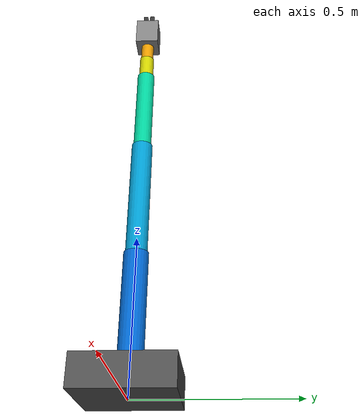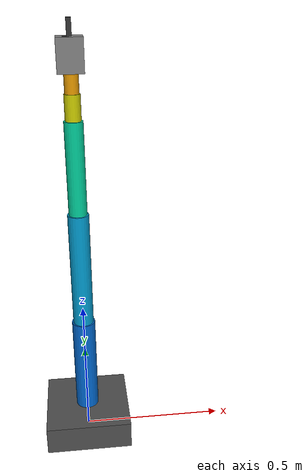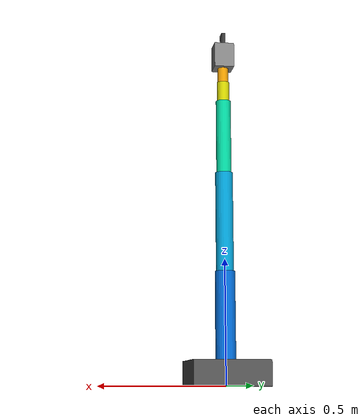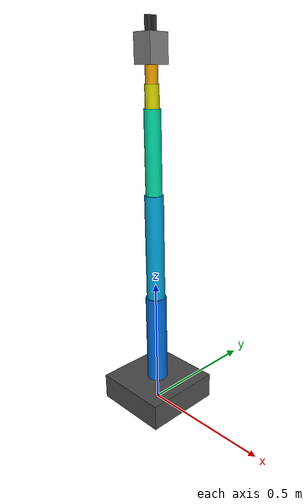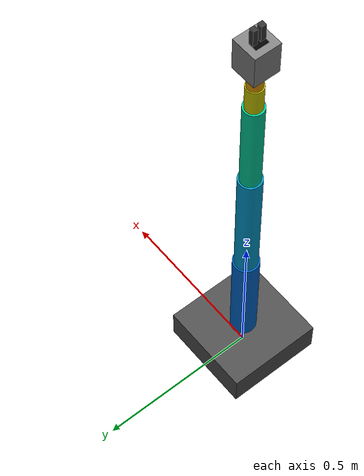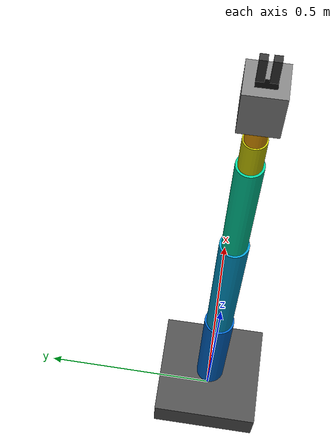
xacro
<?xml version="1.0"?>
<robot name="nexus_ags" xmlns:xacro="http://www.ros.org/wiki/xacro">

    <link name="world" />

    <!-- WORLD to BASE -->
    <joint name="world_joint" type="fixed">
        <parent link="world" />
        <child link="base_link" />
        <origin xyz="0 0 0" rpy="0 0 0" />
    </joint>
    <link name="base_link">
        <visual>
            <origin xyz="0 0 0.05" />
            <geometry>
                <box size="0.3 0.3 0.1" />
            </geometry>
            <material name="base">
                <color rgba="0.3 0.3 0.3 1" />
            </material>
        </visual>
        <collision>
            <origin xyz="0 0 0.05" />
            <geometry>
                <box size="0.3 0.3 0.1" />
            </geometry>
        </collision>
        <inertial>
            <origin xyz="0 0 0.05" />
            <mass value="50" />
            <inertia ixx="0.5" iyy="0.5" izz="0.5" ixy="0" ixz="0" iyz="0" />
        </inertial>
    </link>

    <!-- BASE to SHOULDER -->
    <joint name="shoulder_joint" type="revolute">
        <parent link="base_link" />
        <child link="shoulder_link" />
        <origin xyz="0 0 0.05" />
        <axis xyz="0 0 1" />
        <limit lower="-3.14" upper="3.14" effort="300" velocity="1" />
    </joint>
    <!-- JOINT to SHOULDER -->
    <link name="shoulder_link">
        <visual>
            <origin xyz="0 0 0.2" />
            <geometry>
                <cylinder length="0.4" radius="0.04" />
            </geometry>
            <material name="shoulder">
                <color rgba="0.0 0.4 0.8 1" />
            </material>
        </visual>
        <collision>
            <origin xyz="0 0 0.2" />
            <geometry>
                <cylinder length="0.4" radius="0.04" />
            </geometry>
        </collision>
        <inertial>
            <origin xyz="0 0 0.2" />
            <mass value="2" />
            <inertia ixx="0.02" iyy="0.02" izz="0.02" ixy="0" ixz="0" iyz="0" />
        </inertial>
    </link>

    <!-- SHOULDER to EBLOW -->
    <joint name="elbow_joint" type="revolute">
        <parent link="shoulder_link" />
        <child link="elbow_link" />
        <origin xyz="0 0 0.4" />
        <axis xyz="1 0 0" />
        <limit lower="-1.57" upper="1.57" effort="300" velocity="1" />
    </joint>
    <link name="elbow_link">
        <visual>
            <origin xyz="0 0 0.2" />
            <geometry>
                <cylinder length="0.4" radius="0.035" />
            </geometry>
            <material name="elbow">
                <color rgba="0.0 0.6 0.8 1" />
            </material>
        </visual>
        <collision>
            <origin xyz="0 0 0.2" />
            <geometry>
                <cylinder length="0.4" radius="0.035" />
            </geometry>
        </collision>
        <inertial>
            <origin xyz="0 0 0.2" />
            <mass value="1.5" />
            <inertia ixx="0.015" iyy="0.015" izz="0.015" ixy="0" ixz="0" iyz="0" />
        </inertial>
    </link>

    <!-- ELBOW to FOREARM -->
    <joint name="forearm_joint" type="revolute">
        <parent link="elbow_link" />
        <child link="forearm_link" />
        <origin xyz="0 0 0.4" />
        <axis xyz="1 0 0" />
        <limit lower="-1.57" upper="1.57" effort="300" velocity="1" />
    </joint>
    <link name="forearm_link">
        <visual>
            <origin xyz="0 0 0.15" />
            <geometry>
                <cylinder length="0.3" radius="0.03" />
            </geometry>
            <material name="forearm">
                <color rgba="0.0 0.8 0.6 1" />
            </material>
        </visual>
        <collision>
            <origin xyz="0 0 0.15" />
            <geometry>
                <cylinder length="0.3" radius="0.03" />
            </geometry>
        </collision>
        <inertial>
            <origin xyz="0 0 0.15" />
            <mass value="1" />
            <inertia ixx="0.01" iyy="0.01" izz="0.01" ixy="0" ixz="0" iyz="0" />
        </inertial>
    </link>

    <!-- FOREARM to WRIST PITCH -->
    <joint name="wrist_pitch_joint" type="revolute">
        <parent link="forearm_link" />
        <child link="wrist_pitch_link" />
        <origin xyz="0 0 0.3" />
        <axis xyz="1 0 0" />
        <limit lower="-1.57" upper="1.57" effort="100" velocity="1" />
    </joint>
    <link name="wrist_pitch_link">
        <visual>
            <origin xyz="0 0 0.04" />
            <geometry>
                <cylinder length="0.08" radius="0.025" />
            </geometry>
            <material name="wrist_pitch">
                <color rgba="0.8 0.8 0.0 1" />
            </material>
        </visual>
        <collision>
            <origin xyz="0 0 0.04" />
            <geometry>
                <cylinder length="0.08" radius="0.025" />
            </geometry>
        </collision>
        <inertial>
            <origin xyz="0 0 0.04" />
            <mass value="0.4" />
            <inertia ixx="0.002" iyy="0.002" izz="0.002" ixy="0" ixz="0" iyz="0" />
        </inertial>
    </link>

    <!-- WRIST PITCH to WRIST ROLL -->
    <joint name="wrist_roll_joint" type="revolute">
        <parent link="wrist_pitch_link" />
        <child link="wrist_roll_link" />
        <origin xyz="0 0 0.08" />
        <axis xyz="0 0 1" />
        <limit lower="-3.14" upper="3.14" effort="50" velocity="2" />
    </joint>
    <link name="wrist_roll_link">
        <visual>
            <origin xyz="0 0 0.03" />
            <geometry>
                <cylinder length="0.06" radius="0.022" />
            </geometry>
            <material name="wrist_roll">
                <color rgba="0.9 0.6 0.0 1" />
            </material>
        </visual>
        <collision>
            <origin xyz="0 0 0.03" />
            <geometry>
                <cylinder length="0.06" radius="0.022" />
            </geometry>
        </collision>
        <inertial>
            <origin xyz="0 0 0.03" />
            <mass value="0.3" />
            <inertia ixx="0.001" iyy="0.001" izz="0.001" ixy="0" ixz="0" iyz="0" />
        </inertial>
    </link>

    <!-- WRIST ROLL to GRIPPER BASE -->
    <joint name="gripper_mount_joint" type="fixed">
        <parent link="wrist_roll_link" />
        <child link="gripper_base" />
        <origin xyz="0 0 0.06" />
    </joint>
    <link name="gripper_base">
        <visual>
            <origin xyz="0 0 0.05" />
            <geometry>
                <box size="0.08 0.08 0.1" />
            </geometry>
            <material name="gripper">
                <color rgba="0.5 0.5 0.5 1" />
            </material>
        </visual>
        <collision>
            <origin xyz="0 0 0.05" />
            <geometry>
                <box size="0.08 0.08 0.1" />
            </geometry>
        </collision>
        <inertial>
            <origin xyz="0 0 0.05" />
            <mass value="0.4" />
            <inertia ixx="0.002" iyy="0.002" izz="0.002" ixy="0" ixz="0" iyz="0" />
        </inertial>
    </link>

    <!-- GRIPPER BASE to CAMERA -->
    <joint name="camera_joint" type="fixed">
        <parent link="gripper_base" />
        <child link="camera_link" />
        <origin xyz="0 0 0.08" rpy="0 -1.57 0" />
    </joint>
    <link name="camera_link">
        <visual>
            <geometry>
                <box size="0.04 0.04 0.04" />
            </geometry>
            <material name="black">
                <color rgba="0 0 0 1" />
            </material>
        </visual>
    </link>

    <!-- GRIPPER BASE to LEFT FINGER -->
    <joint name="left_finger_joint" type="prismatic">
        <parent link="gripper_base" />
        <child link="left_finger" />
        <origin xyz="0 0.012 0.05" />
        <axis xyz="0 1 0" />
        <limit lower="0" upper="0.025" effort="100" velocity="0.2" />
    </joint>
    <link name="left_finger">
        <visual>
            <origin xyz="0 0 0.05" />
            <geometry>
                <box size="0.015 0.015 0.1" />
            </geometry>
            <material name="finger">
                <color rgba="0.2 0.2 0.2 1" />
            </material>
        </visual>
        <collision>
            <origin xyz="0 0 0.05" />
            <geometry>
                <box size="0.015 0.015 0.1" />
            </geometry>
        </collision>
        <inertial>
            <origin xyz="0 0 0.05" />
            <mass value="0.05" />
            <inertia ixx="0.0002" iyy="0.0002" izz="0.0002" ixy="0" ixz="0" iyz="0" />
        </inertial>
    </link>

    <!-- GRIPPER BASE to RIGHT FINGER -->
    <joint name="right_finger_joint" type="prismatic">
        <parent link="gripper_base" />
        <child link="right_finger" />
        <origin xyz="0 -0.012 0.05" />
        <axis xyz="0 -1 0" />
        <limit lower="0" upper="0.025" effort="100" velocity="0.2" />
    </joint>
    <link name="right_finger">
        <visual>
            <origin xyz="0 0 0.05" />
            <geometry>
                <box size="0.015 0.015 0.1" />
            </geometry>
            <material name="finger">
                <color rgba="0.2 0.2 0.2 1" />
            </material>
        </visual>
        <collision>
            <origin xyz="0 0 0.05" />
            <geometry>
                <box size="0.015 0.015 0.1" />
            </geometry>
        </collision>
        <inertial>
            <origin xyz="0 0 0.05" />
            <mass value="0.05" />
            <inertia ixx="0.0002" iyy="0.0002" izz="0.0002" ixy="0" ixz="0" iyz="0" />
        </inertial>
    </link>

    <!-- CAMERA PLUGIN -->
    <gazebo reference="camera_link">
        <sensor name="camera" type="camera">
            <update_rate>30</update_rate>
            <topic>camera/image</topic>
            <camera>
                <horizontal_fov>1.396</horizontal_fov>
                <image>
                    <width>640</width>
                    <height>480</height>
                    <format>R8G8B8</format>
                </image>
            </camera>
        </sensor>
    </gazebo>
    <gazebo>
        <plugin
            filename="gz-sim-sensors-system"
            name="gz::sim::systems::Sensors">
            <render_engine>ogre2</render_engine>
        </plugin>
    </gazebo>

    <!-- ================= ROS2 CONTROL ================= -->
    <ros2_control name="nexus_ags_controller" type="system">
        <hardware>
            <plugin>gz_ros2_control/GazeboSimSystem</plugin>
        </hardware>
        <joint name="shoulder_joint">
            <command_interface name="position" />
            <state_interface name="position" />
            <state_interface name="velocity" />
        </joint>
        <joint name="elbow_joint">
            <command_interface name="position" />
            <state_interface name="position" />
            <state_interface name="velocity" />
        </joint>
        <joint name="forearm_joint">
            <command_interface name="position" />
            <state_interface name="position" />
            <state_interface name="velocity" />
        </joint>
        <joint name="wrist_pitch_joint">
            <command_interface name="position" />
            <state_interface name="position" />
            <state_interface name="velocity" />
        </joint>
        <joint name="wrist_roll_joint">
            <command_interface name="position" />
            <state_interface name="position" />
            <state_interface name="velocity" />
        </joint>
        <joint name="left_finger_joint">
            <command_interface name="position" />
            <state_interface name="position" />
            <state_interface name="velocity" />
        </joint>
        <joint name="right_finger_joint">
            <command_interface name="position" />
            <state_interface name="position" />
            <state_interface name="velocity" />
        </joint>
    </ros2_control>
    <!-- ================= GAZEBO ================= -->
    <gazebo>
        <plugin filename="libgz_ros2_control-system.so"
            name="gz_ros2_control::GazeboSimROS2ControlPlugin">
            <parameters>
                /home/madhu/ros2_nexus_ags_ws/install/ags_description/share/ags_description/config/controllers.yaml</parameters>
        </plugin>
    </gazebo>
</robot>
